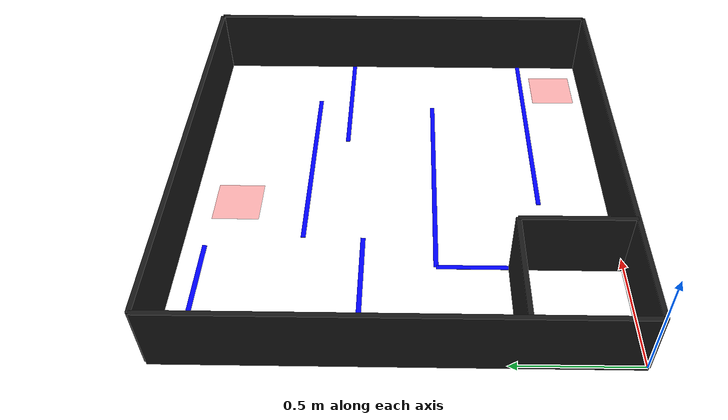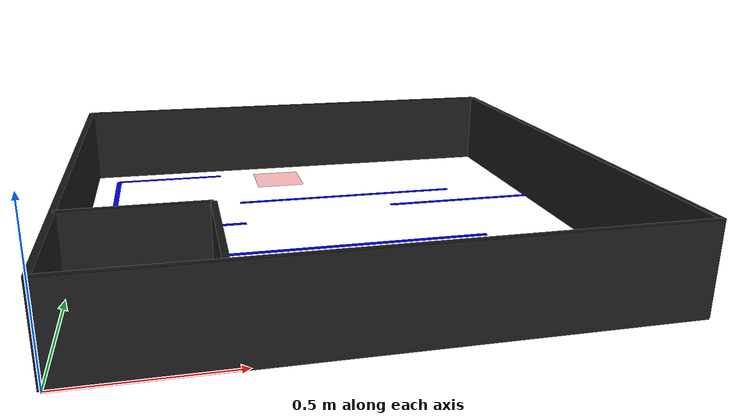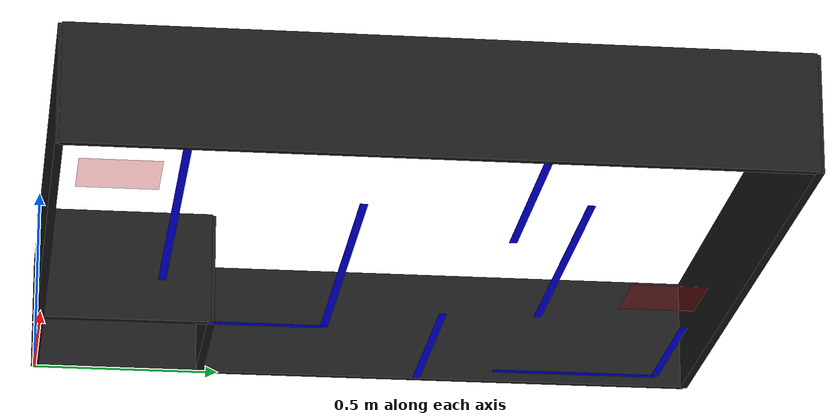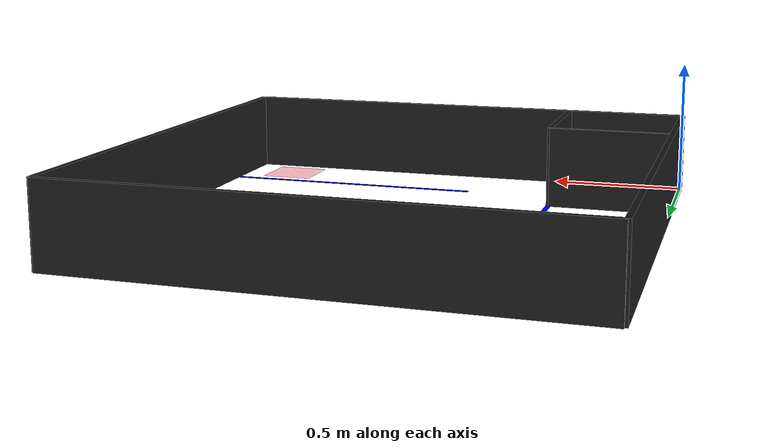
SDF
<?xml version='1.0'?>
<sdf version='1.6'>
  <model name='maze_1_8m'>
    <static>true</static>
    <pose>0 0 0 0 0 0</pose>

    <!-- Wall Settings: Height 0.3m, Thickness 0.02m -->

    <!-- 1. Bottom Wall (A-B): (0,0) to (18,0) -> Length 1.8m -->
    <link name='wall_bottom'>
      <pose>0.9 0 0.15 0 0 0</pose>
      <collision name='collision'>
        <geometry>
          <box>
            <size>1.8 0.02 0.3</size>
          </box>
        </geometry>
      </collision>
      <visual name='visual'>
        <geometry>
          <box>
            <size>1.8 0.02 0.3</size>
          </box>
        </geometry>
        <material>
          <ambient>0.1 0.1 0.1 1</ambient>
          <diffuse>0.1 0.1 0.1 1</diffuse>
        </material>
      </visual>
    </link>

    <!-- 2. Top Wall (C-D): (0,18) to (18,18) -> Length 1.8m -->
    <link name='wall_top'>
      <pose>0.9 1.8 0.15 0 0 0</pose>
      <collision name='collision'>
        <geometry>
          <box>
            <size>1.8 0.02 0.3</size>
          </box>
        </geometry>
      </collision>
      <visual name='visual'>
        <geometry>
          <box>
            <size>1.8 0.02 0.3</size>
          </box>
        </geometry>
        <material>
          <ambient>0.1 0.1 0.1 1</ambient>
          <diffuse>0.1 0.1 0.1 1</diffuse>
        </material>
      </visual>
    </link>

    <!-- 3. Left Wall (A-C): (0,0) to (0,18) -> Length 1.8m -->
    <link name='wall_left'>
      <pose>0 0.9 0.15 0 0 0</pose>
      <collision name='collision'>
        <geometry>
          <box>
            <size>0.02 1.8 0.3</size>
          </box>
        </geometry>
      </collision>
      <visual name='visual'>
        <geometry>
          <box>
            <size>0.02 1.8 0.3</size>
          </box>
        </geometry>
        <material>
          <ambient>0.1 0.1 0.1 1</ambient>
          <diffuse>0.1 0.1 0.1 1</diffuse>
        </material>
      </visual>
    </link>

    <!-- 4. Right Wall (B-D): (18,0) to (18,18) -> Length 1.8m -->
    <link name='wall_right'>
      <pose>1.8 0.9 0.15 0 0 0</pose>
      <collision name='collision'>
        <geometry>
          <box>
            <size>0.02 1.8 0.3</size>
          </box>
        </geometry>
      </collision>
      <visual name='visual'>
        <geometry>
          <box>
            <size>0.02 1.8 0.3</size>
          </box>
        </geometry>
        <material>
          <ambient>0.1 0.1 0.1 1</ambient>
          <diffuse>0.1 0.1 0.1 1</diffuse>
        </material>
      </visual>
    </link>

    <!-- 5. Internal Wall GF (Vertical): x=4.5, y=0 to 4.5 -> Length 0.45m -->
    <link name='wall_gf'>
      <pose>0.45 0.225 0.15 0 0 0</pose>
      <collision name='collision'>
        <geometry>
          <box>
            <size>0.02 0.45 0.3</size>
          </box>
        </geometry>
      </collision>
      <visual name='visual'>
        <geometry>
          <box>
            <size>0.02 0.45 0.3</size>
          </box>
        </geometry>
        <material>
          <ambient>0.1 0.1 0.1 1</ambient>
          <diffuse>0.1 0.1 0.1 1</diffuse>
        </material>
      </visual>
    </link>

    <!-- 6. Internal Wall FE (Horizontal): y=4.5, x=0 to 4.5 -> Length 0.45m -->
    <link name='wall_fe'>
      <pose>0.225 0.45 0.15 0 0 0</pose>
      <collision name='collision'>
        <geometry>
          <box>
            <size>0.45 0.02 0.3</size>
          </box>
        </geometry>
      </collision>
      <visual name='visual'>
        <geometry>
          <box>
            <size>0.45 0.02 0.3</size>
          </box>
        </geometry>
        <material>
          <ambient>0.1 0.1 0.1 1</ambient>
          <diffuse>0.1 0.1 0.1 1</diffuse>
        </material>
      </visual>
    </link>

    <!-- Settings: Z=0.001 (Just above ground), Thickness 0.02m -->

    <!-- 1. Line LM: (8,3) to (18,3) -> Length 1.0m, Center(1.3, 0.3) -->
    <link name='line_lm'>
      <pose>1.3 0.3 0.001 0 0 0</pose>
      <visual name='visual'>
        <geometry>
          <box>
            <size>1.0 0.02 0.001</size>
          </box>
        </geometry>
        <material>
          <ambient>0 0 1 1</ambient>
          <diffuse>0 0 1 1</diffuse>
        </material>
      </visual>
    </link>

    <!-- 2. Line M1-L1: (4.5,7.5) to (14.5,7.5) -> Length 1.0m, Center(0.95, 0.75) -->
    <link name='line_m1l1'>
      <pose>0.95 0.75 0.001 0 0 0</pose>
      <visual name='visual'>
        <geometry>
          <box>
            <size>1.0 0.02 0.001</size>
          </box>
        </geometry>
        <material>
          <ambient>0 0 1 1</ambient>
          <diffuse>0 0 1 1</diffuse>
        </material>
      </visual>
    </link>

    <!-- 3. Line M1-F (Vertical): (4.5,4.5) to (4.5,7.5) -> Length 0.3m, Center(0.45, 0.6) -->
    <link name='line_m1f'>
      <pose>0.45 0.6 0.001 0 0 0</pose>
      <visual name='visual'>
        <geometry>
          <box>
            <size>0.02 0.3 0.001</size>
          </box>
        </geometry>
        <material>
          <ambient>0 0 1 1</ambient>
          <diffuse>0 0 1 1</diffuse>
        </material>
      </visual>
    </link>

    <!-- 4. Line KN: (0,10.5) to (6,10.5) -> Length 0.6m, Center(0.3, 1.05) -->
    <link name='line_kn'>
      <pose>0.3 1.05 0.001 0 0 0</pose>
      <visual name='visual'>
        <geometry>
          <box>
            <size>0.6 0.02 0.001</size>
          </box>
        </geometry>
        <material>
          <ambient>0 0 1 1</ambient>
          <diffuse>0 0 1 1</diffuse>
        </material>
      </visual>
    </link>

    <!-- 5. Line N1-K1: (12,11.5) to (18,11.5) -> Length 0.6m, Center(1.5, 1.15) -->
    <link name='line_n1k1'>
      <pose>1.5 1.15 0.001 0 0 0</pose>
      <visual name='visual'>
        <geometry>
          <box>
            <size>0.6 0.02 0.001</size>
          </box>
        </geometry>
        <material>
          <ambient>0 0 1 1</ambient>
          <diffuse>0 0 1 1</diffuse>
        </material>
      </visual>
    </link>

    <!-- 6. Line IH: (6,13) to (15,13) -> Length 0.9m, Center(1.05, 1.3) -->
    <link name='line_ih'>
      <pose>1.05 1.3 0.001 0 0 0</pose>
      <visual name='visual'>
        <geometry>
          <box>
            <size>0.9 0.02 0.001</size>
          </box>
        </geometry>
        <material>
          <ambient>0 0 1 1</ambient>
          <diffuse>0 0 1 1</diffuse>
        </material>
      </visual>
    </link>

    <!-- 7. Line TS (Vertical): (1,12.5) to (1,17) -> Length 0.45m, Center(0.1, 1.475) -->
    <link name='line_ts'>
      <pose>0.1 1.475 0.001 0 0 0</pose>
      <visual name='visual'>
        <geometry>
          <box>
            <size>0.02 0.45 0.001</size>
          </box>
        </geometry>
        <material>
          <ambient>0 0 1 1</ambient>
          <diffuse>0 0 1 1</diffuse>
        </material>
      </visual>
    </link>

    <!-- 8. Line RS (Horizontal): (1,17) to (5.5,17) -> Length 0.45m, Center(0.325, 1.7) -->
    <link name='line_rs'>
      <pose>0.325 1.7 0.001 0 0 0</pose>
      <visual name='visual'>
        <geometry>
          <box>
            <size>0.45 0.02 0.001</size>
          </box>
        </geometry>
        <material>
          <ambient>0 0 1 1</ambient>
          <diffuse>0 0 1 1</diffuse>
        </material>
      </visual>
    </link>

    <!-- START ZONE: Approx Center(1.6, 0.15) -->
    <link name='marker_start'>
      <pose>1.6 0.15 0.001 0 0 0</pose>
      <visual name='visual'>
        <geometry>
          <box>
            <size>0.2 0.2 0.001</size>
          </box>
        </geometry>
        <material>
          <ambient>1 0 0 0.3</ambient> <!-- Red transparent -->
          <diffuse>1 0 0 0.3</diffuse>
        </material>
      </visual>
    </link>

    <!-- END ZONE: Approx Center(0.8, 1.6) -->
    <link name='marker_end'>
      <pose>0.8 1.6 0.001 0 0 0</pose>
      <visual name='visual'>
        <geometry>
          <box>
            <size>0.2 0.2 0.001</size>
          </box>
        </geometry>
        <material>
          <ambient>1 0 0 0.3</ambient> <!-- Red transparent -->
          <diffuse>1 0 0 0.3</diffuse>
        </material>
      </visual>
    </link>

  </model>
</sdf>
